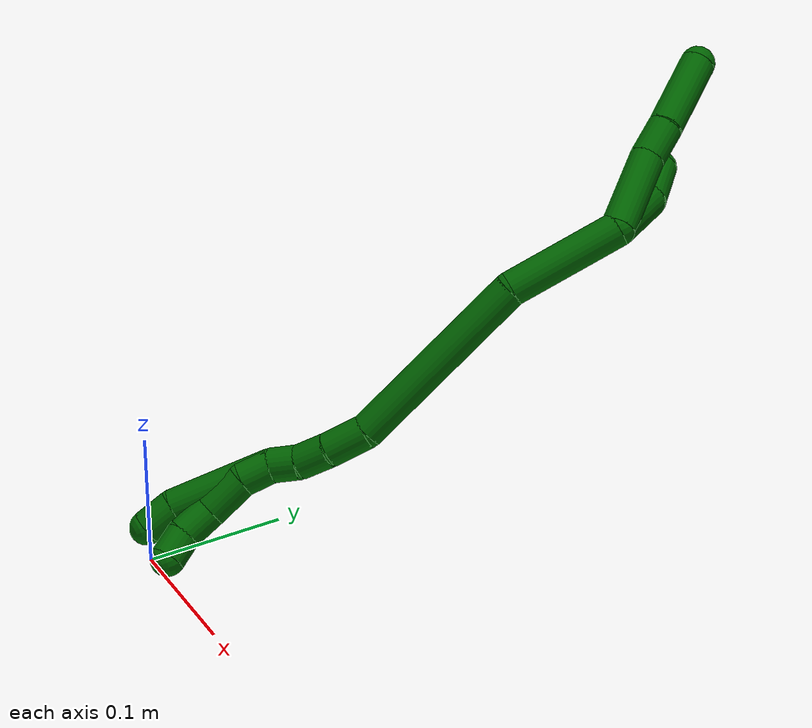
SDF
<sdf version="1.7">
 <world name="default">
  <model name="6">
   <static>0</static>
   <link name="6">
    <collision name="collision-cylinder-e_1_2_8">
     <pose>0.019673 0.000867 0.023843 -0.036365 0.689556 -0.013061</pose>
     <geometry><cylinder><radius>0.0125</radius><length>0.061847</length></cylinder></geometry>
     <surface>
      <friction><ode><mu>1.16</mu><mu2>1.16</mu2><slip1>0</slip1><slip2>0</slip2></ode></friction>
      <contact><ode><kp>1e+06</kp><kd>1</kd><max_vel>0</max_vel><min_depth>0.001</min_depth></ode></contact>
     </surface>
    </collision>
    <visual name="visual-cylinder-e_1_2_8">
     <pose>0.019673 0.000867 0.023843 -0.036365 0.689556 -0.013061</pose>
     <geometry><cylinder><radius>0.0125</radius><length>0.061847</length></cylinder></geometry>
     <material><ambient>0 0.392157 0.003922 1</ambient></material>
    </visual>
    <collision name="collision-cylinder-e_2_8_9">
     <pose>0.046901 0.003336 0.05966 -0.132912 0.558805 -0.038185</pose>
     <geometry><cylinder><radius>0.0125</radius><length>0.028497</length></cylinder></geometry>
     <surface>
      <friction><ode><mu>1.16</mu><mu2>1.16</mu2><slip1>0</slip1><slip2>0</slip2></ode></friction>
      <contact><ode><kp>1e+06</kp><kd>1</kd><max_vel>0</max_vel><min_depth>0.001</min_depth></ode></contact>
     </surface>
    </collision>
    <visual name="visual-cylinder-e_2_8_9">
     <pose>0.046901 0.003336 0.05966 -0.132912 0.558805 -0.038185</pose>
     <geometry><cylinder><radius>0.0125</radius><length>0.028497</length></cylinder></geometry>
     <material><ambient>0 0.392157 0.003922 1</ambient></material>
    </visual>
    <collision name="collision-cylinder-e_3_9_6">
     <pose>0.071782 0.005804 0.095898 -0.035741 0.619841 -0.011447</pose>
     <geometry><cylinder><radius>0.0125</radius><length>0.059656</length></cylinder></geometry>
     <surface>
      <friction><ode><mu>1.16</mu><mu2>1.16</mu2><slip1>0</slip1><slip2>0</slip2></ode></friction>
      <contact><ode><kp>1e+06</kp><kd>1</kd><max_vel>0</max_vel><min_depth>0.001</min_depth></ode></contact>
     </surface>
    </collision>
    <visual name="visual-cylinder-e_3_9_6">
     <pose>0.071782 0.005804 0.095898 -0.035741 0.619841 -0.011447</pose>
     <geometry><cylinder><radius>0.0125</radius><length>0.059656</length></cylinder></geometry>
     <material><ambient>0 0.392157 0.003922 1</ambient></material>
    </visual>
    <collision name="collision-cylinder-e_1_2_10">
     <pose>0.012502 -0.014762 0.022282 0.585121 0.437506 0.133722</pose>
     <geometry><cylinder><radius>0.0125</radius><length>0.059015</length></cylinder></geometry>
     <surface>
      <friction><ode><mu>1.16</mu><mu2>1.16</mu2><slip1>0</slip1><slip2>0</slip2></ode></friction>
      <contact><ode><kp>1e+06</kp><kd>1</kd><max_vel>0</max_vel><min_depth>0.001</min_depth></ode></contact>
     </surface>
    </collision>
    <visual name="visual-cylinder-e_1_2_10">
     <pose>0.012502 -0.014762 0.022282 0.585121 0.437506 0.133722</pose>
     <geometry><cylinder><radius>0.0125</radius><length>0.059015</length></cylinder></geometry>
     <material><ambient>0 0.392157 0.003922 1</ambient></material>
    </visual>
    <collision name="collision-cylinder-e_2_10_5">
     <pose>0.038477 -0.036348 0.058415 0.457736 0.71744 0.174243</pose>
     <geometry><cylinder><radius>0.0125</radius><length>0.040985</length></cylinder></geometry>
     <surface>
      <friction><ode><mu>1.16</mu><mu2>1.16</mu2><slip1>0</slip1><slip2>0</slip2></ode></friction>
      <contact><ode><kp>1e+06</kp><kd>1</kd><max_vel>0</max_vel><min_depth>0.001</min_depth></ode></contact>
     </surface>
    </collision>
    <visual name="visual-cylinder-e_2_10_5">
     <pose>0.038477 -0.036348 0.058415 0.457736 0.71744 0.174243</pose>
     <geometry><cylinder><radius>0.0125</radius><length>0.040985</length></cylinder></geometry>
     <material><ambient>0 0.392157 0.003922 1</ambient></material>
    </visual>
    <collision name="collision-cylinder-e_1_2_11">
     <pose>0.001909 -0.011539 -0.040567 2.86448 0.045234 0.321629</pose>
     <geometry><cylinder><radius>0.0125</radius><length>0.084439</length></cylinder></geometry>
     <surface>
      <friction><ode><mu>1.16</mu><mu2>1.16</mu2><slip1>0</slip1><slip2>0</slip2></ode></friction>
      <contact><ode><kp>1e+06</kp><kd>1</kd><max_vel>0</max_vel><min_depth>0.001</min_depth></ode></contact>
     </surface>
    </collision>
    <visual name="visual-cylinder-e_1_2_11">
     <pose>0.001909 -0.011539 -0.040567 2.86448 0.045234 0.321629</pose>
     <geometry><cylinder><radius>0.0125</radius><length>0.084439</length></cylinder></geometry>
     <material><ambient>0 0.392157 0.003922 1</ambient></material>
    </visual>
    <collision name="collision-cylinder-e_2_11_12">
     <pose>-0.004475 -0.059962 -0.140325 2.58433 -0.118363 -0.408458</pose>
     <geometry><cylinder><radius>0.0125</radius><length>0.140467</length></cylinder></geometry>
     <surface>
      <friction><ode><mu>1.16</mu><mu2>1.16</mu2><slip1>0</slip1><slip2>0</slip2></ode></friction>
      <contact><ode><kp>1e+06</kp><kd>1</kd><max_vel>0</max_vel><min_depth>0.001</min_depth></ode></contact>
     </surface>
    </collision>
    <visual name="visual-cylinder-e_2_11_12">
     <pose>-0.004475 -0.059962 -0.140325 2.58433 -0.118363 -0.408458</pose>
     <geometry><cylinder><radius>0.0125</radius><length>0.140467</length></cylinder></geometry>
     <material><ambient>0 0.392157 0.003922 1</ambient></material>
    </visual>
    <collision name="collision-cylinder-e_3_12_13">
     <pose>-0.009866 -0.103981 -0.212592 2.64207 0.192475 0.723575</pose>
     <geometry><cylinder><radius>0.0125</radius><length>0.030353</length></cylinder></geometry>
     <surface>
      <friction><ode><mu>1.16</mu><mu2>1.16</mu2><slip1>0</slip1><slip2>0</slip2></ode></friction>
      <contact><ode><kp>1e+06</kp><kd>1</kd><max_vel>0</max_vel><min_depth>0.001</min_depth></ode></contact>
     </surface>
    </collision>
    <visual name="visual-cylinder-e_3_12_13">
     <pose>-0.009866 -0.103981 -0.212592 2.64207 0.192475 0.723575</pose>
     <geometry><cylinder><radius>0.0125</radius><length>0.030353</length></cylinder></geometry>
     <material><ambient>0 0.392157 0.003922 1</ambient></material>
    </visual>
    <collision name="collision-cylinder-e_4_13_14">
     <pose>-0.003529 -0.117389 -0.235044 2.552 0.295469 0.911409</pose>
     <geometry><cylinder><radius>0.0125</radius><length>0.023583</length></cylinder></geometry>
     <surface>
      <friction><ode><mu>1.16</mu><mu2>1.16</mu2><slip1>0</slip1><slip2>0</slip2></ode></friction>
      <contact><ode><kp>1e+06</kp><kd>1</kd><max_vel>0</max_vel><min_depth>0.001</min_depth></ode></contact>
     </surface>
    </collision>
    <visual name="visual-cylinder-e_4_13_14">
     <pose>-0.003529 -0.117389 -0.235044 2.552 0.295469 0.911409</pose>
     <geometry><cylinder><radius>0.0125</radius><length>0.023583</length></cylinder></geometry>
     <material><ambient>0 0.392157 0.003922 1</ambient></material>
    </visual>
    <collision name="collision-cylinder-e_5_14_1">
     <pose>0.005251 -0.127745 -0.252584 2.6777 0.52986 1.70893</pose>
     <geometry><cylinder><radius>0.0125</radius><length>0.021157</length></cylinder></geometry>
     <surface>
      <friction><ode><mu>1.16</mu><mu2>1.16</mu2><slip1>0</slip1><slip2>0</slip2></ode></friction>
      <contact><ode><kp>1e+06</kp><kd>1</kd><max_vel>0</max_vel><min_depth>0.001</min_depth></ode></contact>
     </surface>
    </collision>
    <visual name="visual-cylinder-e_5_14_1">
     <pose>0.005251 -0.127745 -0.252584 2.6777 0.52986 1.70893</pose>
     <geometry><cylinder><radius>0.0125</radius><length>0.021157</length></cylinder></geometry>
     <material><ambient>0 0.392157 0.003922 1</ambient></material>
    </visual>
    <collision name="collision-cylinder-e_1_1_15">
     <pose>0.012099 -0.135299 -0.271522 2.83008 0.131843 0.795978</pose>
     <geometry><cylinder><radius>0.0125</radius><length>0.022839</length></cylinder></geometry>
     <surface>
      <friction><ode><mu>1.16</mu><mu2>1.16</mu2><slip1>0</slip1><slip2>0</slip2></ode></friction>
      <contact><ode><kp>1e+06</kp><kd>1</kd><max_vel>0</max_vel><min_depth>0.001</min_depth></ode></contact>
     </surface>
    </collision>
    <visual name="visual-cylinder-e_1_1_15">
     <pose>0.012099 -0.135299 -0.271522 2.83008 0.131843 0.795978</pose>
     <geometry><cylinder><radius>0.0125</radius><length>0.022839</length></cylinder></geometry>
     <material><ambient>0 0.392157 0.003922 1</ambient></material>
    </visual>
    <collision name="collision-cylinder-e_2_15_16">
     <pose>0.011461 -0.146103 -0.296129 2.65406 -0.135796 -0.533791</pose>
     <geometry><cylinder><radius>0.0125</radius><length>0.031602</length></cylinder></geometry>
     <surface>
      <friction><ode><mu>1.16</mu><mu2>1.16</mu2><slip1>0</slip1><slip2>0</slip2></ode></friction>
      <contact><ode><kp>1e+06</kp><kd>1</kd><max_vel>0</max_vel><min_depth>0.001</min_depth></ode></contact>
     </surface>
    </collision>
    <visual name="visual-cylinder-e_2_15_16">
     <pose>0.011461 -0.146103 -0.296129 2.65406 -0.135796 -0.533791</pose>
     <geometry><cylinder><radius>0.0125</radius><length>0.031602</length></cylinder></geometry>
     <material><ambient>0 0.392157 0.003922 1</ambient></material>
    </visual>
    <collision name="collision-cylinder-e_3_16_17">
     <pose>0.006533 -0.156065 -0.321673 2.92084 -0.22823 -1.60439</pose>
     <geometry><cylinder><radius>0.0125</radius><length>0.024647</length></cylinder></geometry>
     <surface>
      <friction><ode><mu>1.16</mu><mu2>1.16</mu2><slip1>0</slip1><slip2>0</slip2></ode></friction>
      <contact><ode><kp>1e+06</kp><kd>1</kd><max_vel>0</max_vel><min_depth>0.001</min_depth></ode></contact>
     </surface>
    </collision>
    <visual name="visual-cylinder-e_3_16_17">
     <pose>0.006533 -0.156065 -0.321673 2.92084 -0.22823 -1.60439</pose>
     <geometry><cylinder><radius>0.0125</radius><length>0.024647</length></cylinder></geometry>
     <material><ambient>0 0.392157 0.003922 1</ambient></material>
    </visual>
    <collision name="collision-cylinder-e_4_17_4">
     <pose>-0.001382 -0.160348 -0.342348 2.95895 -0.512431 -2.46902</pose>
     <geometry><cylinder><radius>0.0125</radius><length>0.020913</length></cylinder></geometry>
     <surface>
      <friction><ode><mu>1.16</mu><mu2>1.16</mu2><slip1>0</slip1><slip2>0</slip2></ode></friction>
      <contact><ode><kp>1e+06</kp><kd>1</kd><max_vel>0</max_vel><min_depth>0.001</min_depth></ode></contact>
     </surface>
    </collision>
    <visual name="visual-cylinder-e_4_17_4">
     <pose>-0.001382 -0.160348 -0.342348 2.95895 -0.512431 -2.46902</pose>
     <geometry><cylinder><radius>0.0125</radius><length>0.020913</length></cylinder></geometry>
     <material><ambient>0 0.392157 0.003922 1</ambient></material>
    </visual>
    <collision name="collision-cylinder-e_1_1_18">
     <pose>0.019089 -0.146245 -0.29482 2.74135 0.225608 1.0187</pose>
     <geometry><cylinder><radius>0.0125</radius><length>0.075919</length></cylinder></geometry>
     <surface>
      <friction><ode><mu>1.16</mu><mu2>1.16</mu2><slip1>0</slip1><slip2>0</slip2></ode></friction>
      <contact><ode><kp>1e+06</kp><kd>1</kd><max_vel>0</max_vel><min_depth>0.001</min_depth></ode></contact>
     </surface>
    </collision>
    <visual name="visual-cylinder-e_1_1_18">
     <pose>0.019089 -0.146245 -0.29482 2.74135 0.225608 1.0187</pose>
     <geometry><cylinder><radius>0.0125</radius><length>0.075919</length></cylinder></geometry>
     <material><ambient>0 0.392157 0.003922 1</ambient></material>
    </visual>
    <collision name="collision-cylinder-e_2_18_3">
     <pose>0.026889 -0.165812 -0.339755 2.69872 -0.057401 -0.253671</pose>
     <geometry><cylinder><radius>0.0125</radius><length>0.024081</length></cylinder></geometry>
     <surface>
      <friction><ode><mu>1.16</mu><mu2>1.16</mu2><slip1>0</slip1><slip2>0</slip2></ode></friction>
      <contact><ode><kp>1e+06</kp><kd>1</kd><max_vel>0</max_vel><min_depth>0.001</min_depth></ode></contact>
     </surface>
    </collision>
    <visual name="visual-cylinder-e_2_18_3">
     <pose>0.026889 -0.165812 -0.339755 2.69872 -0.057401 -0.253671</pose>
     <geometry><cylinder><radius>0.0125</radius><length>0.024081</length></cylinder></geometry>
     <material><ambient>0 0.392157 0.003922 1</ambient></material>
    </visual>
    <collision name="collision-sphere-3">
     <pose>0.026199 -0.170964 -0.350616 0 -0 0</pose>
     <geometry><sphere><radius>0.0125</radius></sphere></geometry>
     <surface>
      <friction><ode><mu>1.16</mu><mu2>1.16</mu2><slip1>0</slip1><slip2>0</slip2></ode></friction>
      <contact><ode><kp>1e+06</kp><kd>1</kd><max_vel>0</max_vel><min_depth>0.001</min_depth></ode></contact>
     </surface>
    </collision>
    <visual name="visual-sphere-3">
     <pose>0.026199 -0.170964 -0.350616 0 -0 0</pose>
     <geometry><sphere><radius>0.0125</radius></sphere></geometry>
     <material><ambient>0 0.392157 0.003922 1</ambient></material>
    </visual>
    <collision name="collision-sphere-5">
     <pose>0.05195 -0.043171 0.072266 0 -0 0</pose>
     <geometry><sphere><radius>0.0125</radius></sphere></geometry>
     <surface>
      <friction><ode><mu>1.16</mu><mu2>1.16</mu2><slip1>0</slip1><slip2>0</slip2></ode></friction>
      <contact><ode><kp>1e+06</kp><kd>1</kd><max_vel>0</max_vel><min_depth>0.001</min_depth></ode></contact>
     </surface>
    </collision>
    <visual name="visual-sphere-5">
     <pose>0.05195 -0.043171 0.072266 0 -0 0</pose>
     <geometry><sphere><radius>0.0125</radius></sphere></geometry>
     <material><ambient>0 0.392157 0.003922 1</ambient></material>
    </visual>
    <collision name="collision-sphere-10">
     <pose>0.025004 -0.029524 0.044564 0 -0 0</pose>
     <geometry><sphere><radius>0.0125</radius></sphere></geometry>
     <surface>
      <friction><ode><mu>1.16</mu><mu2>1.16</mu2><slip1>0</slip1><slip2>0</slip2></ode></friction>
      <contact><ode><kp>1e+06</kp><kd>1</kd><max_vel>0</max_vel><min_depth>0.001</min_depth></ode></contact>
     </surface>
    </collision>
    <visual name="visual-sphere-10">
     <pose>0.025004 -0.029524 0.044564 0 -0 0</pose>
     <geometry><sphere><radius>0.0125</radius></sphere></geometry>
     <material><ambient>0 0.392157 0.003922 1</ambient></material>
    </visual>
    <collision name="collision-sphere-6">
     <pose>0.08911 0.006672 0.120162 0 -0 0</pose>
     <geometry><sphere><radius>0.0125</radius></sphere></geometry>
     <surface>
      <friction><ode><mu>1.16</mu><mu2>1.16</mu2><slip1>0</slip1><slip2>0</slip2></ode></friction>
      <contact><ode><kp>1e+06</kp><kd>1</kd><max_vel>0</max_vel><min_depth>0.001</min_depth></ode></contact>
     </surface>
    </collision>
    <visual name="visual-sphere-6">
     <pose>0.08911 0.006672 0.120162 0 -0 0</pose>
     <geometry><sphere><radius>0.0125</radius></sphere></geometry>
     <material><ambient>0 0.392157 0.003922 1</ambient></material>
    </visual>
    <collision name="collision-sphere-9">
     <pose>0.054455 0.004937 0.071634 0 -0 0</pose>
     <geometry><sphere><radius>0.0125</radius></sphere></geometry>
     <surface>
      <friction><ode><mu>1.16</mu><mu2>1.16</mu2><slip1>0</slip1><slip2>0</slip2></ode></friction>
      <contact><ode><kp>1e+06</kp><kd>1</kd><max_vel>0</max_vel><min_depth>0.001</min_depth></ode></contact>
     </surface>
    </collision>
    <visual name="visual-sphere-9">
     <pose>0.054455 0.004937 0.071634 0 -0 0</pose>
     <geometry><sphere><radius>0.0125</radius></sphere></geometry>
     <material><ambient>0 0.392157 0.003922 1</ambient></material>
    </visual>
    <collision name="collision-sphere-2">
     <geometry><sphere><radius>0.0125</radius></sphere></geometry>
     <surface>
      <friction><ode><mu>1.16</mu><mu2>1.16</mu2><slip1>0</slip1><slip2>0</slip2></ode></friction>
      <contact><ode><kp>1e+06</kp><kd>1</kd><max_vel>0</max_vel><min_depth>0.001</min_depth></ode></contact>
     </surface>
    </collision>
    <visual name="visual-sphere-2">
     <geometry><sphere><radius>0.0125</radius></sphere></geometry>
     <material><ambient>0 0.392157 0.003922 1</ambient></material>
    </visual>
    <collision name="collision-sphere-8">
     <pose>0.039347 0.001735 0.047685 0 -0 0</pose>
     <geometry><sphere><radius>0.0125</radius></sphere></geometry>
     <surface>
      <friction><ode><mu>1.16</mu><mu2>1.16</mu2><slip1>0</slip1><slip2>0</slip2></ode></friction>
      <contact><ode><kp>1e+06</kp><kd>1</kd><max_vel>0</max_vel><min_depth>0.001</min_depth></ode></contact>
     </surface>
    </collision>
    <visual name="visual-sphere-8">
     <pose>0.039347 0.001735 0.047685 0 -0 0</pose>
     <geometry><sphere><radius>0.0125</radius></sphere></geometry>
     <material><ambient>0 0.392157 0.003922 1</ambient></material>
    </visual>
    <collision name="collision-sphere-11">
     <pose>0.003818 -0.023077 -0.081135 0 -0 0</pose>
     <geometry><sphere><radius>0.0125</radius></sphere></geometry>
     <surface>
      <friction><ode><mu>1.16</mu><mu2>1.16</mu2><slip1>0</slip1><slip2>0</slip2></ode></friction>
      <contact><ode><kp>1e+06</kp><kd>1</kd><max_vel>0</max_vel><min_depth>0.001</min_depth></ode></contact>
     </surface>
    </collision>
    <visual name="visual-sphere-11">
     <pose>0.003818 -0.023077 -0.081135 0 -0 0</pose>
     <geometry><sphere><radius>0.0125</radius></sphere></geometry>
     <material><ambient>0 0.392157 0.003922 1</ambient></material>
    </visual>
    <collision name="collision-sphere-12">
     <pose>-0.012769 -0.096846 -0.199516 0 -0 0</pose>
     <geometry><sphere><radius>0.0125</radius></sphere></geometry>
     <surface>
      <friction><ode><mu>1.16</mu><mu2>1.16</mu2><slip1>0</slip1><slip2>0</slip2></ode></friction>
      <contact><ode><kp>1e+06</kp><kd>1</kd><max_vel>0</max_vel><min_depth>0.001</min_depth></ode></contact>
     </surface>
    </collision>
    <visual name="visual-sphere-12">
     <pose>-0.012769 -0.096846 -0.199516 0 -0 0</pose>
     <geometry><sphere><radius>0.0125</radius></sphere></geometry>
     <material><ambient>0 0.392157 0.003922 1</ambient></material>
    </visual>
    <collision name="collision-sphere-13">
     <pose>-0.006963 -0.111117 -0.225668 0 -0 0</pose>
     <geometry><sphere><radius>0.0125</radius></sphere></geometry>
     <surface>
      <friction><ode><mu>1.16</mu><mu2>1.16</mu2><slip1>0</slip1><slip2>0</slip2></ode></friction>
      <contact><ode><kp>1e+06</kp><kd>1</kd><max_vel>0</max_vel><min_depth>0.001</min_depth></ode></contact>
     </surface>
    </collision>
    <visual name="visual-sphere-13">
     <pose>-0.006963 -0.111117 -0.225668 0 -0 0</pose>
     <geometry><sphere><radius>0.0125</radius></sphere></geometry>
     <material><ambient>0 0.392157 0.003922 1</ambient></material>
    </visual>
    <collision name="collision-sphere-14">
     <pose>-9.6e-05 -0.123661 -0.24442 0 -0 0</pose>
     <geometry><sphere><radius>0.0125</radius></sphere></geometry>
     <surface>
      <friction><ode><mu>1.16</mu><mu2>1.16</mu2><slip1>0</slip1><slip2>0</slip2></ode></friction>
      <contact><ode><kp>1e+06</kp><kd>1</kd><max_vel>0</max_vel><min_depth>0.001</min_depth></ode></contact>
     </surface>
    </collision>
    <visual name="visual-sphere-14">
     <pose>-9.6e-05 -0.123661 -0.24442 0 -0 0</pose>
     <geometry><sphere><radius>0.0125</radius></sphere></geometry>
     <material><ambient>0 0.392157 0.003922 1</ambient></material>
    </visual>
    <collision name="collision-sphere-1">
     <pose>0.010597 -0.13183 -0.260747 0 -0 0</pose>
     <geometry><sphere><radius>0.0125</radius></sphere></geometry>
     <surface>
      <friction><ode><mu>1.16</mu><mu2>1.16</mu2><slip1>0</slip1><slip2>0</slip2></ode></friction>
      <contact><ode><kp>1e+06</kp><kd>1</kd><max_vel>0</max_vel><min_depth>0.001</min_depth></ode></contact>
     </surface>
    </collision>
    <visual name="visual-sphere-1">
     <pose>0.010597 -0.13183 -0.260747 0 -0 0</pose>
     <geometry><sphere><radius>0.0125</radius></sphere></geometry>
     <material><ambient>0 0.392157 0.003922 1</ambient></material>
    </visual>
    <collision name="collision-sphere-18">
     <pose>0.02758 -0.160661 -0.328894 0 -0 0</pose>
     <geometry><sphere><radius>0.0125</radius></sphere></geometry>
     <surface>
      <friction><ode><mu>1.16</mu><mu2>1.16</mu2><slip1>0</slip1><slip2>0</slip2></ode></friction>
      <contact><ode><kp>1e+06</kp><kd>1</kd><max_vel>0</max_vel><min_depth>0.001</min_depth></ode></contact>
     </surface>
    </collision>
    <visual name="visual-sphere-18">
     <pose>0.02758 -0.160661 -0.328894 0 -0 0</pose>
     <geometry><sphere><radius>0.0125</radius></sphere></geometry>
     <material><ambient>0 0.392157 0.003922 1</ambient></material>
    </visual>
    <collision name="collision-sphere-15">
     <pose>0.0136 -0.138769 -0.282298 0 -0 0</pose>
     <geometry><sphere><radius>0.0125</radius></sphere></geometry>
     <surface>
      <friction><ode><mu>1.16</mu><mu2>1.16</mu2><slip1>0</slip1><slip2>0</slip2></ode></friction>
      <contact><ode><kp>1e+06</kp><kd>1</kd><max_vel>0</max_vel><min_depth>0.001</min_depth></ode></contact>
     </surface>
    </collision>
    <visual name="visual-sphere-15">
     <pose>0.0136 -0.138769 -0.282298 0 -0 0</pose>
     <geometry><sphere><radius>0.0125</radius></sphere></geometry>
     <material><ambient>0 0.392157 0.003922 1</ambient></material>
    </visual>
    <collision name="collision-sphere-16">
     <pose>0.009322 -0.153436 -0.309961 0 -0 0</pose>
     <geometry><sphere><radius>0.0125</radius></sphere></geometry>
     <surface>
      <friction><ode><mu>1.16</mu><mu2>1.16</mu2><slip1>0</slip1><slip2>0</slip2></ode></friction>
      <contact><ode><kp>1e+06</kp><kd>1</kd><max_vel>0</max_vel><min_depth>0.001</min_depth></ode></contact>
     </surface>
    </collision>
    <visual name="visual-sphere-16">
     <pose>0.009322 -0.153436 -0.309961 0 -0 0</pose>
     <geometry><sphere><radius>0.0125</radius></sphere></geometry>
     <material><ambient>0 0.392157 0.003922 1</ambient></material>
    </visual>
    <collision name="collision-sphere-17">
     <pose>0.003745 -0.158693 -0.333386 0 -0 0</pose>
     <geometry><sphere><radius>0.0125</radius></sphere></geometry>
     <surface>
      <friction><ode><mu>1.16</mu><mu2>1.16</mu2><slip1>0</slip1><slip2>0</slip2></ode></friction>
      <contact><ode><kp>1e+06</kp><kd>1</kd><max_vel>0</max_vel><min_depth>0.001</min_depth></ode></contact>
     </surface>
    </collision>
    <visual name="visual-sphere-17">
     <pose>0.003745 -0.158693 -0.333386 0 -0 0</pose>
     <geometry><sphere><radius>0.0125</radius></sphere></geometry>
     <material><ambient>0 0.392157 0.003922 1</ambient></material>
    </visual>
    <collision name="collision-sphere-4">
     <pose>-0.006508 -0.162003 -0.351309 0 -0 0</pose>
     <geometry><sphere><radius>0.0125</radius></sphere></geometry>
     <surface>
      <friction><ode><mu>1.16</mu><mu2>1.16</mu2><slip1>0</slip1><slip2>0</slip2></ode></friction>
      <contact><ode><kp>1e+06</kp><kd>1</kd><max_vel>0</max_vel><min_depth>0.001</min_depth></ode></contact>
     </surface>
    </collision>
    <visual name="visual-sphere-4">
     <pose>-0.006508 -0.162003 -0.351309 0 -0 0</pose>
     <geometry><sphere><radius>0.0125</radius></sphere></geometry>
     <material><ambient>0 0.392157 0.003922 1</ambient></material>
    </visual>
    <inertial>
     <pose>0.015038 -0.066524 -0.118777 0 -0 0</pose>
     <mass>0.75</mass>
     <inertia>
      <ixx>0.000326</ixx>
      <ixy>0</ixy>
      <ixz>0</ixz>
      <iyy>-0.000239</iyy>
      <iyz>0</iyz>
      <izz>0.000128</izz>
     </inertia>
    </inertial>
   </link>
   <pose>0.08997 0.321004 0.221859 1.36722 -0.442327 -3.07129</pose>
  </model>
 </world>
</sdf>
